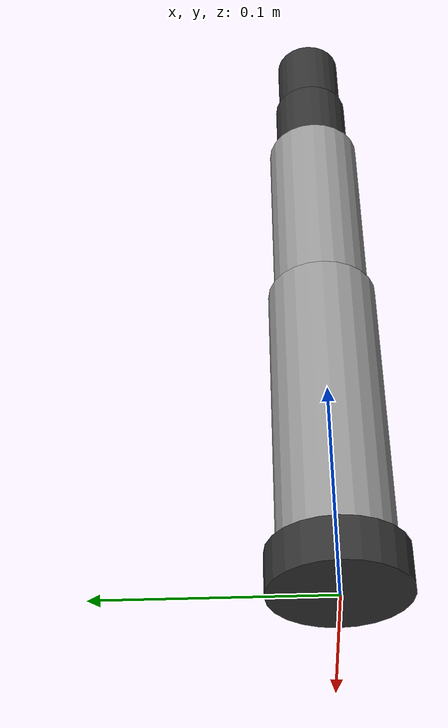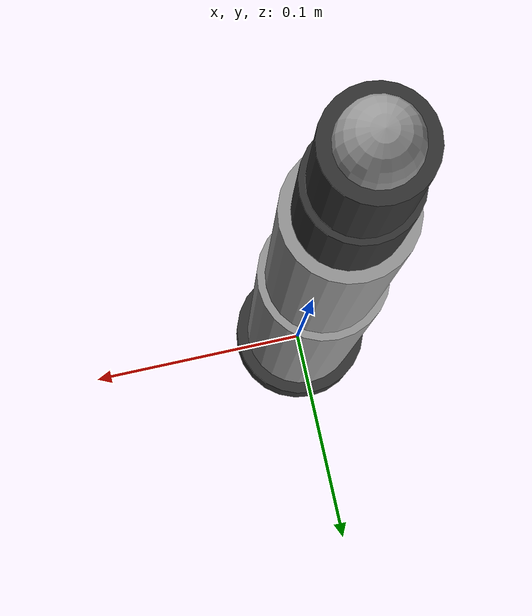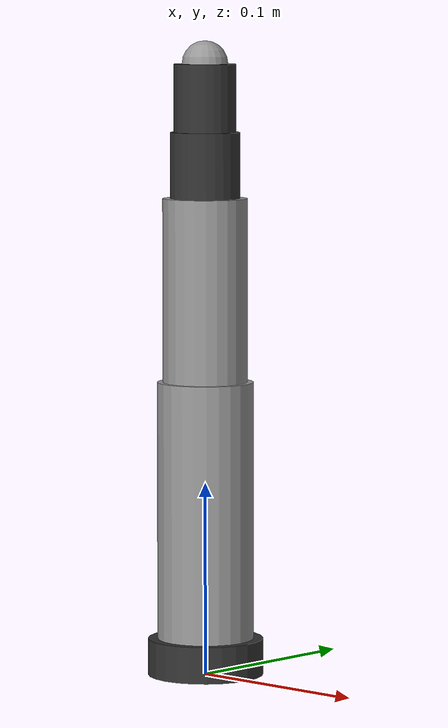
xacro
<?xml version="1.0"?>
<robot name="st3215_robot" xmlns:xacro="http://www.ros.org/wiki/xacro">

  <!-- ═══════════════════════════════════════════════════════════
       PROPERTIES
  ═══════════════════════════════════════════════════════════ -->
  <xacro:property name="L0"  value="0.019"/>
  <xacro:property name="L1"  value="0.134"/>
  <xacro:property name="L2"  value="0.095"/>
  <xacro:property name="L3"  value="0.034"/>
  <xacro:property name="L4"  value="0.035"/>

  <xacro:property name="PI"       value="3.14159265358979"/>
  <xacro:property name="J_LIMIT"  value="${PI}"/>
  <xacro:property name="J_VEL"    value="${PI}"/>    <!-- rad/s max -->
  <xacro:property name="J_EFF"    value="10.0"/>

  <!-- ═══════════════════════════════════════════════════════════
       MATERIAL
  ═══════════════════════════════════════════════════════════ -->
  <material name="dark_grey">
    <color rgba="0.2 0.2 0.2 1.0"/>
  </material>
  <material name="light_grey">
    <color rgba="0.6 0.6 0.6 1.0"/>
  </material>

  <!-- ═══════════════════════════════════════════════════════════
       LINKS
  ═══════════════════════════════════════════════════════════ -->
  <link name="world"/>

  <link name="base_link">
    <visual>
      <geometry><cylinder radius="0.030" length="${L0}"/></geometry>
      <origin xyz="0 0 ${L0/2}" rpy="0 0 0"/>
      <material name="dark_grey"/>
    </visual>
    <inertial>
      <mass value="0.3"/>
      <origin xyz="0 0 ${L0/2}"/>
      <inertia ixx="0.0001" iyy="0.0001" izz="0.0002" ixy="0" ixz="0" iyz="0"/>
    </inertial>
  </link>

  <link name="link_0">
    <visual>
      <geometry><cylinder radius="0.025" length="${L1}"/></geometry>
      <origin xyz="0 0 ${L1/2}" rpy="0 0 0"/>
      <material name="light_grey"/>
    </visual>
    <inertial>
      <mass value="0.2"/>
      <origin xyz="0 0 ${L1/2}"/>
      <inertia ixx="0.0003" iyy="0.0003" izz="0.0001" ixy="0" ixz="0" iyz="0"/>
    </inertial>
  </link>

  <link name="link_1">
    <visual>
      <geometry><cylinder radius="0.022" length="${L2}"/></geometry>
      <origin xyz="0 0 ${L2/2}" rpy="0 0 0"/>
      <material name="light_grey"/>
    </visual>
    <inertial>
      <mass value="0.15"/>
      <origin xyz="0 0 ${L2/2}"/>
      <inertia ixx="0.0002" iyy="0.0002" izz="0.00008" ixy="0" ixz="0" iyz="0"/>
    </inertial>
  </link>

  <link name="link_2">
    <visual>
      <geometry><cylinder radius="0.018" length="${L3}"/></geometry>
      <origin xyz="0 0 ${L3/2}" rpy="0 0 0"/>
      <material name="dark_grey"/>
    </visual>
    <inertial>
      <mass value="0.08"/>
      <origin xyz="0 0 ${L3/2}"/>
      <inertia ixx="0.00005" iyy="0.00005" izz="0.00002" ixy="0" ixz="0" iyz="0"/>
    </inertial>
  </link>

  <link name="link_3">
    <visual>
      <geometry><cylinder radius="0.016" length="${L4}"/></geometry>
      <origin xyz="0 0 ${L4/2}" rpy="0 0 0"/>
      <material name="dark_grey"/>
    </visual>
    <inertial>
      <mass value="0.06"/>
      <origin xyz="0 0 ${L4/2}"/>
      <inertia ixx="0.00003" iyy="0.00003" izz="0.00001" ixy="0" ixz="0" iyz="0"/>
    </inertial>
  </link>

  <link name="link_4">
    <visual>
      <geometry><sphere radius="0.012"/></geometry>
      <origin xyz="0 0 0"/>
      <material name="light_grey"/>
    </visual>
    <inertial>
      <mass value="0.03"/>
      <origin xyz="0 0 0"/>
      <inertia ixx="0.000005" iyy="0.000005" izz="0.000005" ixy="0" ixz="0" iyz="0"/>
    </inertial>
  </link>

  <link name="tool_link"/>

  <!-- ═══════════════════════════════════════════════════════════
       JOINTS
  ═══════════════════════════════════════════════════════════ -->

  <!-- World → base (fixed) -->
  <joint name="world_to_base" type="fixed">
    <parent link="world"/>
    <child link="base_link"/>
    <origin xyz="0 0 0" rpy="0 0 0"/>
  </joint>

  <!-- Joint 0 — вращение вокруг Z (поворот основания) -->
  <joint name="joint_0" type="revolute">
    <parent link="base_link"/>
    <child link="link_0"/>
    <origin xyz="0 0 ${L0}" rpy="0 0 0"/>
    <axis xyz="0 0 1"/>
    <limit lower="${-J_LIMIT}" upper="${J_LIMIT}" effort="${J_EFF}" velocity="${J_VEL}"/>
    <dynamics damping="0.1" friction="0.05"/>
  </joint>

  <!-- Joint 1 — подъём плеча (вращение вокруг Y) -->
  <joint name="joint_1" type="revolute">
    <parent link="link_0"/>
    <child link="link_1"/>
    <origin xyz="0 0 ${L1}" rpy="0 0 0"/>
    <axis xyz="0 1 0"/>
    <limit lower="${-J_LIMIT}" upper="${J_LIMIT}" effort="${J_EFF}" velocity="${J_VEL}"/>
    <dynamics damping="0.1" friction="0.05"/>
  </joint>

  <!-- Joint 2 — сгибание локтя (вращение вокруг Y) -->
  <joint name="joint_2" type="revolute">
    <parent link="link_1"/>
    <child link="link_2"/>
    <origin xyz="0 0 ${L2}" rpy="0 0 0"/>
    <axis xyz="0 1 0"/>
    <limit lower="${-J_LIMIT}" upper="${J_LIMIT}" effort="${J_EFF}" velocity="${J_VEL}"/>
    <dynamics damping="0.08" friction="0.04"/>
  </joint>

  <!-- Joint 3 — запястье вверх/вниз (вращение вокруг Y) -->
  <joint name="joint_3" type="revolute">
    <parent link="link_2"/>
    <child link="link_3"/>
    <origin xyz="0 0 ${L3}" rpy="0 0 0"/>
    <axis xyz="0 1 0"/>
    <limit lower="${-J_LIMIT}" upper="${J_LIMIT}" effort="${J_EFF}" velocity="${J_VEL}"/>
    <dynamics damping="0.06" friction="0.03"/>
  </joint>

  <!-- Joint 4 — поворот запястья (вращение вокруг Z) -->
  <joint name="joint_4" type="revolute">
    <parent link="link_3"/>
    <child link="link_4"/>
    <origin xyz="0 0 ${L4}" rpy="0 0 0"/>
    <axis xyz="0 0 1"/>
    <limit lower="${-J_LIMIT}" upper="${J_LIMIT}" effort="${J_EFF}" velocity="${J_VEL}"/>
    <dynamics damping="0.05" friction="0.02"/>
  </joint>

  <!-- Joint 5 — поворот инструмента (вращение вокруг Z) -->
  <joint name="joint_5" type="revolute">
    <parent link="link_4"/>
    <child link="tool_link"/>
    <origin xyz="0 0 0" rpy="0 0 0"/>
    <axis xyz="0 0 1"/>
    <limit lower="${-J_LIMIT}" upper="${J_LIMIT}" effort="${J_EFF}" velocity="${J_VEL}"/>
    <dynamics damping="0.04" friction="0.02"/>
  </joint>

  <ros2_control name="ST3215RobotSystem" type="system">
    <hardware>
      <plugin>mock_components/GenericSystem</plugin>
      <!-- Задержка при переходе в position mode, мс -->
      <param name="calculate_dynamics">false</param>
    </hardware>

    <joint name="joint_0">
      <command_interface name="position">
        <param name="min">${-J_LIMIT}</param>
        <param name="max">${J_LIMIT}</param>
      </command_interface>
      <state_interface name="position">
        <param name="initial_value">0.0</param>
      </state_interface>
      <state_interface name="velocity">
        <param name="initial_value">0.0</param>
      </state_interface>
    </joint>

    <joint name="joint_1">
      <command_interface name="position">
        <param name="min">${-J_LIMIT}</param>
        <param name="max">${J_LIMIT}</param>
      </command_interface>
      <state_interface name="position">
        <param name="initial_value">0.0</param>
      </state_interface>
      <state_interface name="velocity">
        <param name="initial_value">0.0</param>
      </state_interface>
    </joint>

    <joint name="joint_2">
      <command_interface name="position">
        <param name="min">${-J_LIMIT}</param>
        <param name="max">${J_LIMIT}</param>
      </command_interface>
      <state_interface name="position">
        <param name="initial_value">0.0</param>
      </state_interface>
      <state_interface name="velocity">
        <param name="initial_value">0.0</param>
      </state_interface>
    </joint>

    <joint name="joint_3">
      <command_interface name="position">
        <param name="min">${-J_LIMIT}</param>
        <param name="max">${J_LIMIT}</param>
      </command_interface>
      <state_interface name="position">
        <param name="initial_value">0.0</param>
      </state_interface>
      <state_interface name="velocity">
        <param name="initial_value">0.0</param>
      </state_interface>
    </joint>

    <joint name="joint_4">
      <command_interface name="position">
        <param name="min">${-J_LIMIT}</param>
        <param name="max">${J_LIMIT}</param>
      </command_interface>
      <state_interface name="position">
        <param name="initial_value">0.0</param>
      </state_interface>
      <state_interface name="velocity">
        <param name="initial_value">0.0</param>
      </state_interface>
    </joint>

    <joint name="joint_5">
      <command_interface name="position">
        <param name="min">${-J_LIMIT}</param>
        <param name="max">${J_LIMIT}</param>
      </command_interface>
      <state_interface name="position">
        <param name="initial_value">0.0</param>
      </state_interface>
      <state_interface name="velocity">
        <param name="initial_value">0.0</param>
      </state_interface>
    </joint>

  </ros2_control>

</robot>
